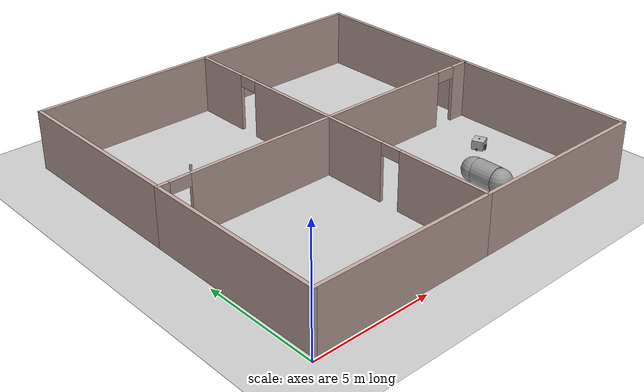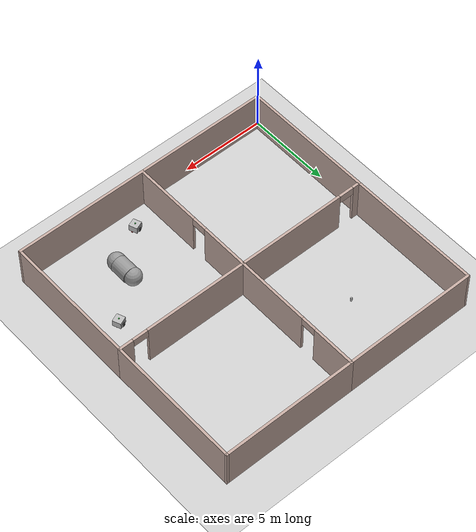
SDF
<sdf version="1.7">
 <world name="default">
  <light name="sun" type="directional">
   <pose>0 0 10 0 -0 0</pose>
   <diffuse>0.8 0.8 0.8 1</diffuse>
   <specular>0.2 0.2 0.2 1</specular>
   <attenuation>
    <range>1000</range>
    <constant>0.9</constant>
    <linear>0.01</linear>
    <quadratic>0.001</quadratic>
   </attenuation>
   <direction>-0.5 0.1 -0.9</direction>
   <spot><inner_angle>0</inner_angle><outer_angle>0</outer_angle><falloff>0</falloff></spot>
  </light>
  <model name="ground_plane">
   <static>1</static>
   <link name="link">
    <collision name="collision">
     <geometry><plane><normal>0 0 1</normal><size>100 100</size></plane></geometry>
     <surface><friction><ode><mu>100</mu><mu2>50</mu2></ode></friction></surface>
    </collision>
    <visual name="visual">
     <cast_shadows>0</cast_shadows>
     <geometry><plane><normal>0 0 1</normal><size>100 100</size></plane></geometry>
     <material>
      <script><uri>file://media/materials/scripts/gazebo.material</uri><name>Gazebo/Grey</name></script>
     </material>
    </visual>
   </link>
  </model>
  <gravity>0 0 -9.8</gravity>
  <magnetic_field>6e-06 2.3e-05 -4.2e-05</magnetic_field>
  <atmosphere type="adiabatic"/>
  <physics type="ode">
   <max_step_size>0.001</max_step_size>
   <real_time_factor>1</real_time_factor>
   <real_time_update_rate>1000</real_time_update_rate>
  </physics>
  <scene><ambient>0.4 0.4 0.4 1</ambient><background>0.7 0.7 0.7 1</background><shadows>1</shadows></scene>
  <audio><device>default</device></audio>
  <spherical_coordinates>
   <surface_model>EARTH_WGS84</surface_model>
   <latitude_deg>0</latitude_deg>
   <longitude_deg>0</longitude_deg>
   <elevation>0</elevation>
   <heading_deg>0</heading_deg>
  </spherical_coordinates>
  <model name="plane_2">
   <pose>8.06755 8.03884 0 0 -0 0</pose>
   <link name="Wall_10">
    <pose>-3.925 0 0 0 -0 0</pose>
    <visual name="Wall_10_Visual_0">
     <pose>-3.73035 0 1.25 0 -0 0</pose>
     <geometry><box><size>0.539304 0.15 2.5</size></box></geometry>
     <material>
      <script><uri>file://media/materials/scripts/gazebo.material</uri><name>Gazebo/Grey</name></script>
      <ambient>0.760784 0.662745 0.627451 1</ambient>
     </material>
     <meta><layer>0</layer></meta>
    </visual>
    <collision name="Wall_10_Collision_0">
     <geometry><box><size>0.539304 0.15 2.5</size></box></geometry>
     <pose>-3.73035 0 1.25 0 -0 0</pose>
    </collision>
    <visual name="Wall_10_Visual_1">
     <pose>0.719652 0 1.25 0 -0 0</pose>
     <geometry><box><size>6.5607 0.15 2.5</size></box></geometry>
     <material>
      <script><uri>file://media/materials/scripts/gazebo.material</uri><name>Gazebo/Grey</name></script>
      <ambient>0.760784 0.662745 0.627451 1</ambient>
     </material>
     <meta><layer>0</layer></meta>
    </visual>
    <collision name="Wall_10_Collision_1">
     <geometry><box><size>6.5607 0.15 2.5</size></box></geometry>
     <pose>0.719652 0 1.25 0 -0 0</pose>
    </collision>
    <visual name="Wall_10_Visual_2">
     <pose>-3.0107 0 2.25 0 -0 0</pose>
     <geometry><box><size>0.9 0.15 0.5</size></box></geometry>
     <material>
      <script><uri>file://media/materials/scripts/gazebo.material</uri><name>Gazebo/Grey</name></script>
      <ambient>0.760784 0.662745 0.627451 1</ambient>
     </material>
     <meta><layer>0</layer></meta>
    </visual>
    <collision name="Wall_10_Collision_2">
     <geometry><box><size>0.9 0.15 0.5</size></box></geometry>
     <pose>-3.0107 0 2.25 0 -0 0</pose>
    </collision>
   </link>
   <link name="Wall_11">
    <pose>-0 -3.925 0 0 -0 -1.5708</pose>
    <visual name="Wall_11_Visual_0">
     <pose>-2.52544 0 1.25 0 -0 0</pose>
     <geometry><box><size>2.94912 0.15 2.5</size></box></geometry>
     <material>
      <script><uri>file://media/materials/scripts/gazebo.material</uri><name>Gazebo/Grey</name></script>
      <ambient>0.760784 0.662745 0.627451 1</ambient>
     </material>
     <meta><layer>0</layer></meta>
    </visual>
    <collision name="Wall_11_Collision_0">
     <geometry><box><size>2.94912 0.15 2.5</size></box></geometry>
     <pose>-2.52544 0 1.25 0 -0 0</pose>
    </collision>
    <visual name="Wall_11_Visual_1">
     <pose>1.92456 0 1.25 0 -0 0</pose>
     <geometry><box><size>4.15088 0.15 2.5</size></box></geometry>
     <material>
      <script><uri>file://media/materials/scripts/gazebo.material</uri><name>Gazebo/Grey</name></script>
      <ambient>0.760784 0.662745 0.627451 1</ambient>
     </material>
     <meta><layer>0</layer></meta>
    </visual>
    <collision name="Wall_11_Collision_1">
     <geometry><box><size>4.15088 0.15 2.5</size></box></geometry>
     <pose>1.92456 0 1.25 0 -0 0</pose>
    </collision>
    <visual name="Wall_11_Visual_2">
     <pose>-0.600877 0 2.25 0 -0 0</pose>
     <geometry><box><size>0.9 0.15 0.5</size></box></geometry>
     <material>
      <script><uri>file://media/materials/scripts/gazebo.material</uri><name>Gazebo/Grey</name></script>
      <ambient>0.760784 0.662745 0.627451 1</ambient>
     </material>
     <meta><layer>0</layer></meta>
    </visual>
    <collision name="Wall_11_Collision_2">
     <geometry><box><size>0.9 0.15 0.5</size></box></geometry>
     <pose>-0.600877 0 2.25 0 -0 0</pose>
    </collision>
   </link>
   <link name="Wall_12">
    <collision name="Wall_12_Collision">
     <geometry><box><size>8 0.15 2.5</size></box></geometry>
     <pose>0 0 1.25 0 -0 0</pose>
    </collision>
    <visual name="Wall_12_Visual">
     <pose>0 0 1.25 0 -0 0</pose>
     <geometry><box><size>8 0.15 2.5</size></box></geometry>
     <material>
      <script><uri>file://media/materials/scripts/gazebo.material</uri><name>Gazebo/Grey</name></script>
      <ambient>0.760784 0.662745 0.627451 1</ambient>
     </material>
     <meta><layer>0</layer></meta>
    </visual>
    <pose>-3.925 -7.85 0 0 -0 3.14159</pose>
   </link>
   <link name="Wall_15">
    <pose>3.925 0 0 0 -0 0</pose>
    <visual name="Wall_15_Visual_0">
     <pose>-0.892945 0 1.25 0 -0 0</pose>
     <geometry><box><size>6.21411 0.15 2.5</size></box></geometry>
     <material>
      <script><uri>file://media/materials/scripts/gazebo.material</uri><name>Gazebo/Grey</name></script>
      <ambient>0.760784 0.662745 0.627451 1</ambient>
     </material>
     <meta><layer>0</layer></meta>
    </visual>
    <collision name="Wall_15_Collision_0">
     <geometry><box><size>6.21411 0.15 2.5</size></box></geometry>
     <pose>-0.892945 0 1.25 0 -0 0</pose>
    </collision>
    <visual name="Wall_15_Visual_1">
     <pose>3.55706 0 1.25 0 -0 0</pose>
     <geometry><box><size>0.885891 0.15 2.5</size></box></geometry>
     <material>
      <script><uri>file://media/materials/scripts/gazebo.material</uri><name>Gazebo/Grey</name></script>
      <ambient>0.760784 0.662745 0.627451 1</ambient>
     </material>
     <meta><layer>0</layer></meta>
    </visual>
    <collision name="Wall_15_Collision_1">
     <geometry><box><size>0.885891 0.15 2.5</size></box></geometry>
     <pose>3.55706 0 1.25 0 -0 0</pose>
    </collision>
    <visual name="Wall_15_Visual_2">
     <pose>2.66411 0 2.25 0 -0 0</pose>
     <geometry><box><size>0.9 0.15 0.5</size></box></geometry>
     <material>
      <script><uri>file://media/materials/scripts/gazebo.material</uri><name>Gazebo/Grey</name></script>
      <ambient>0.760784 0.662745 0.627451 1</ambient>
     </material>
     <meta><layer>0</layer></meta>
    </visual>
    <collision name="Wall_15_Collision_2">
     <geometry><box><size>0.9 0.15 0.5</size></box></geometry>
     <pose>2.66411 0 2.25 0 -0 0</pose>
    </collision>
   </link>
   <link name="Wall_16">
    <collision name="Wall_16_Collision">
     <geometry><box><size>8 0.15 2.5</size></box></geometry>
     <pose>0 0 1.25 0 -0 0</pose>
    </collision>
    <visual name="Wall_16_Visual">
     <pose>0 0 1.25 0 -0 0</pose>
     <geometry><box><size>8 0.15 2.5</size></box></geometry>
     <material>
      <script><uri>file://media/materials/scripts/gazebo.material</uri><name>Gazebo/Grey</name></script>
      <ambient>0.760784 0.662745 0.627451 1</ambient>
     </material>
     <meta><layer>0</layer></meta>
    </visual>
    <pose>7.85 -3.925 0 0 -0 -1.5708</pose>
   </link>
   <link name="Wall_17">
    <collision name="Wall_17_Collision">
     <geometry><box><size>8 0.15 2.5</size></box></geometry>
     <pose>0 0 1.25 0 -0 0</pose>
    </collision>
    <visual name="Wall_17_Visual">
     <pose>0 0 1.25 0 -0 0</pose>
     <geometry><box><size>8 0.15 2.5</size></box></geometry>
     <material>
      <script><uri>file://media/materials/scripts/gazebo.material</uri><name>Gazebo/Grey</name></script>
      <ambient>0.760784 0.662745 0.627451 1</ambient>
     </material>
     <meta><layer>0</layer></meta>
    </visual>
    <pose>3.925 -7.85 0 0 -0 3.14159</pose>
   </link>
   <link name="Wall_26">
    <collision name="Wall_26_Collision">
     <geometry><box><size>8 0.15 2.5</size></box></geometry>
     <pose>0 0 1.25 0 -0 0</pose>
    </collision>
    <visual name="Wall_26_Visual">
     <pose>0 0 1.25 0 -0 0</pose>
     <geometry><box><size>8 0.15 2.5</size></box></geometry>
     <material>
      <script><uri>file://media/materials/scripts/gazebo.material</uri><name>Gazebo/Grey</name></script>
      <ambient>0.760784 0.662745 0.627451 1</ambient>
     </material>
     <meta><layer>0</layer></meta>
    </visual>
    <pose>-7.85 3.925 0 0 -0 1.5708</pose>
   </link>
   <link name="Wall_27">
    <collision name="Wall_27_Collision">
     <geometry><box><size>8 0.15 2.5</size></box></geometry>
     <pose>0 0 1.25 0 -0 0</pose>
    </collision>
    <visual name="Wall_27_Visual">
     <pose>0 0 1.25 0 -0 0</pose>
     <geometry><box><size>8 0.15 2.5</size></box></geometry>
     <material>
      <script><uri>file://media/materials/scripts/gazebo.material</uri><name>Gazebo/Grey</name></script>
      <ambient>0.760784 0.662745 0.627451 1</ambient>
     </material>
     <meta><layer>0</layer></meta>
    </visual>
    <pose>-3.925 7.85 0 0 -0 0</pose>
   </link>
   <link name="Wall_28">
    <pose>-0 3.925 0 0 -0 -1.5708</pose>
    <visual name="Wall_28_Visual_0">
     <pose>-2.68769 0 1.25 0 -0 0</pose>
     <geometry><box><size>2.62462 0.15 2.5</size></box></geometry>
     <material>
      <script><uri>file://media/materials/scripts/gazebo.material</uri><name>Gazebo/Grey</name></script>
      <ambient>0.760784 0.662745 0.627451 1</ambient>
     </material>
     <meta><layer>0</layer></meta>
    </visual>
    <collision name="Wall_28_Collision_0">
     <geometry><box><size>2.62462 0.15 2.5</size></box></geometry>
     <pose>-2.68769 0 1.25 0 -0 0</pose>
    </collision>
    <visual name="Wall_28_Visual_1">
     <pose>1.76231 0 1.25 0 -0 0</pose>
     <geometry><box><size>4.47538 0.15 2.5</size></box></geometry>
     <material>
      <script><uri>file://media/materials/scripts/gazebo.material</uri><name>Gazebo/Grey</name></script>
      <ambient>0.760784 0.662745 0.627451 1</ambient>
     </material>
     <meta><layer>0</layer></meta>
    </visual>
    <collision name="Wall_28_Collision_1">
     <geometry><box><size>4.47538 0.15 2.5</size></box></geometry>
     <pose>1.76231 0 1.25 0 -0 0</pose>
    </collision>
    <visual name="Wall_28_Visual_2">
     <pose>-0.925382 0 2.25 0 -0 0</pose>
     <geometry><box><size>0.9 0.15 0.5</size></box></geometry>
     <material>
      <script><uri>file://media/materials/scripts/gazebo.material</uri><name>Gazebo/Grey</name></script>
      <ambient>0.760784 0.662745 0.627451 1</ambient>
     </material>
     <meta><layer>0</layer></meta>
    </visual>
    <collision name="Wall_28_Collision_2">
     <geometry><box><size>0.9 0.15 0.5</size></box></geometry>
     <pose>-0.925382 0 2.25 0 -0 0</pose>
    </collision>
   </link>
   <link name="Wall_30">
    <collision name="Wall_30_Collision">
     <geometry><box><size>8 0.15 2.5</size></box></geometry>
     <pose>0 0 1.25 0 -0 0</pose>
    </collision>
    <visual name="Wall_30_Visual">
     <pose>0 0 1.25 0 -0 0</pose>
     <geometry><box><size>8 0.15 2.5</size></box></geometry>
     <material>
      <script><uri>file://media/materials/scripts/gazebo.material</uri><name>Gazebo/Grey</name></script>
      <ambient>0.760784 0.662745 0.627451 1</ambient>
     </material>
     <meta><layer>0</layer></meta>
    </visual>
    <pose>7.85 3.925 0 0 -0 1.5708</pose>
   </link>
   <link name="Wall_31">
    <collision name="Wall_31_Collision">
     <geometry><box><size>8 0.15 2.5</size></box></geometry>
     <pose>0 0 1.25 0 -0 0</pose>
    </collision>
    <visual name="Wall_31_Visual">
     <pose>0 0 1.25 0 -0 0</pose>
     <geometry><box><size>8 0.15 2.5</size></box></geometry>
     <material>
      <script><uri>file://media/materials/scripts/gazebo.material</uri><name>Gazebo/Grey</name></script>
      <ambient>0.760784 0.662745 0.627451 1</ambient>
     </material>
     <meta><layer>0</layer></meta>
    </visual>
    <pose>3.925 7.85 0 0 -0 3.14159</pose>
   </link>
   <link name="Wall_9">
    <collision name="Wall_9_Collision">
     <geometry><box><size>8 0.15 2.5</size></box></geometry>
     <pose>0 0 1.25 0 -0 0</pose>
    </collision>
    <visual name="Wall_9_Visual">
     <pose>0 0 1.25 0 -0 0</pose>
     <geometry><box><size>8 0.15 2.5</size></box></geometry>
     <material>
      <script><uri>file://media/materials/scripts/gazebo.material</uri><name>Gazebo/Grey</name></script>
      <ambient>0.760784 0.662745 0.627451 1</ambient>
     </material>
     <meta><layer>0</layer></meta>
    </visual>
    <pose>-7.85 -3.925 0 0 -0 1.5708</pose>
   </link>
   <static>1</static>
  </model>
  <model name="beer">
   <link name="link">
    <pose>0 0 0.115 0 -0 0</pose>
    <inertial>
     <mass>0.39</mass>
     <inertia><ixx>0.00058</ixx><ixy>0</ixy><ixz>0</ixz><iyy>0.00058</iyy><iyz>0</iyz><izz>0.00019</izz></inertia>
    </inertial>
    <collision name="collision">
     <geometry><cylinder><radius>0.055</radius><length>0.23</length></cylinder></geometry>
    </collision>
    <visual name="visual">
     <geometry><cylinder><radius>0.055</radius><length>0.23</length></cylinder></geometry>
     <material>
      <script>
       <uri>model://beer/materials/scripts</uri>
       <uri>model://beer/materials/textures</uri>
       <name>Beer/Diffuse</name>
      </script>
     </material>
    </visual>
   </link>
   <pose>4.27424 11.9649 -2e-06 1e-06 -0 -4.8e-05</pose>
  </model>
  <model name="pollo">
   <link name="pollo/base_link">
    <inertial>
     <pose>0.05 0 0.101429 0 -0 0</pose>
     <mass>0.7</mass>
     <inertia>
      <ixx>0.0258086</ixx>
      <ixy>0</ixy>
      <ixz>-0.00345</ixz>
      <iyy>0.0363086</iyy>
      <iyz>0</iyz>
      <izz>0.0135</izz>
     </inertia>
    </inertial>
    <collision name="pollo/base_link_fixed_joint_lump__pollo/chassis_link_collision">
     <pose>0 0 0.3 0 -0 0</pose>
     <geometry><box><size>0.57 0.52 0.5</size></box></geometry>
     <surface><friction><ode><mu>1e-06</mu><mu2>1e-06</mu2></ode></friction></surface>
    </collision>
    <visual name="pollo/base_link_fixed_joint_lump__body_visual_visual">
     <pose>0 0 0.3 0 -0 0</pose>
     <geometry><box><size>0.5 0.5 0.4</size></box></geometry>
    </visual>
    <visual name="pollo/base_link_fixed_joint_lump__front_caster_visual_visual_1">
     <pose>-0.2 0 0.1 1.57079 1.57079 3.14159</pose>
     <geometry><cylinder><length>0.05</length><radius>0.05</radius></cylinder></geometry>
    </visual>
    <visual name="pollo/base_link_fixed_joint_lump__back_caster_visual_visual_2">
     <pose>0.2 0 0.1 1.57079 1.57079 3.14159</pose>
     <geometry><cylinder><length>0.05</length><radius>0.05</radius></cylinder></geometry>
    </visual>
    <visual name="pollo/base_link_fixed_joint_lump__pollo/frontal_camera_link_visual_3">
     <pose>0.35 0.0125 0.2 0 -0 0</pose>
     <geometry><box><size>0.025 0.1 0.025</size></box></geometry>
     <material>
      <script><name>Gazebo/Red</name><uri>file://media/materials/scripts/gazebo.material</uri></script>
     </material>
    </visual>
    <visual name="pollo/base_link_fixed_joint_lump__pollo/base_laser_visual_4">
     <pose>0 0 0.52 0 -0 0</pose>
     <geometry><cylinder><length>0.02</length><radius>0.04</radius></cylinder></geometry>
     <material>
      <script><name>Gazebo/Green</name><uri>file://media/materials/scripts/gazebo.material</uri></script>
     </material>
    </visual>
    <sensor name="f_camera" type="depth">
     <visualize>1</visualize>
     <update_rate>10</update_rate>
     <camera>
      <horizontal_fov>1.089</horizontal_fov>
      <image><format>B8G8R8</format><width>640</width><height>240</height><heigth>480</heigth></image>
      <clip><near>0.05</near><far>8</far></clip>
      <noise><type>gaussian</type><mean>0</mean><stddev>0.1</stddev></noise>
     </camera>
     <plugin name="f_camera_controller" filename="libgazebo_ros_camera.so">
      <frame_name>pollo/frontal_camera_link_optical</frame_name>
      <min_depth>0.1</min_depth>
      <max_depth>100.0</max_depth>
      <ros><namespace>pollo</namespace></ros>
     </plugin>
     <pose>0.35 0 0.2 0 -0 0</pose>
    </sensor>
    <sensor name="laser" type="ray">
     <visualize>0</visualize>
     <update_rate>4</update_rate>
     <ray>
      <scan>
       <horizontal>
        <samples>360</samples>
        <min_angle>-3.14</min_angle>
        <max_angle>3.14</max_angle>
        <resolution>1</resolution>
       </horizontal>
       <vertical><samples>1</samples><min_angle>0</min_angle><max_angle>0</max_angle></vertical>
      </scan>
      <range><min>0.403553</min><max>15</max></range>
      <noise><type>gaussian</type><mean>0</mean><stddev>0.02</stddev></noise>
     </ray>
     <plugin name="laser_controller" filename="libgazebo_ros_ray_sensor.so">
      <ros><remapping>~/out:=scan</remapping><namespace>pollo</namespace></ros>
      <output_type>sensor_msgs/LaserScan</output_type>
      <frame_name>pollo/base_laser</frame_name>
     </plugin>
     <pose>0 0 0.51 0 -0 0</pose>
    </sensor>
   </link>
   <joint name="pollo/left_wheel_joint" type="revolute">
    <pose relative_to="pollo/base_link">0 0.27 0.175 1.57079 1.57079 3.14159</pose>
    <parent>pollo/base_link</parent>
    <child>pollo/left_wheel</child>
    <axis>
     <xyz>0 0 1</xyz>
     <limit><lower>-1e+16</lower><upper>1e+16</upper></limit>
     <dynamics><spring_reference>0</spring_reference><spring_stiffness>0</spring_stiffness></dynamics>
    </axis>
   </joint>
   <link name="pollo/left_wheel">
    <pose relative_to="pollo/left_wheel_joint">0 0 0 0 -0 0</pose>
    <inertial>
     <mass>0.0284989</mass>
     <inertia>
      <ixx>1.11756e-05</ixx>
      <ixy>-4.23698e-11</ixy>
      <ixz>-5.93817e-09</ixz>
      <iyy>1.11924e-05</iyy>
      <iyz>-1.44001e-11</iyz>
      <izz>2.07126e-05</izz>
     </inertia>
    </inertial>
    <collision name="pollo/left_wheel_collision">
     <geometry><cylinder><length>0.035</length><radius>0.125</radius></cylinder></geometry>
    </collision>
    <visual name="pollo/left_wheel_visual">
     <geometry><cylinder><length>0.03</length><radius>0.125</radius></cylinder></geometry>
     <material>
      <script><name>Gazebo/Black</name><uri>file://media/materials/scripts/gazebo.material</uri></script>
     </material>
    </visual>
    <plugin filename="libgazebo_ros_joint_state_publisher.so" name="gazebo_ros_joint_state_publisher">
     <update_rate>100</update_rate>
     <ros><remapping>~/out:=joint_states</remapping><namespace>pollo</namespace></ros>
     <joint_name>left_wheel_joint</joint_name>
    </plugin>
   </link>
   <joint name="pollo/right_wheel_joint" type="revolute">
    <pose relative_to="pollo/base_link">0 -0.27 0.175 1.57079 1.57079 3.14159</pose>
    <parent>pollo/base_link</parent>
    <child>pollo/right_wheel</child>
    <axis>
     <xyz>0 0 1</xyz>
     <limit><lower>-1e+16</lower><upper>1e+16</upper></limit>
     <dynamics><spring_reference>0</spring_reference><spring_stiffness>0</spring_stiffness></dynamics>
    </axis>
   </joint>
   <link name="pollo/right_wheel">
    <pose relative_to="pollo/right_wheel_joint">0 0 0 0 -0 0</pose>
    <inertial>
     <mass>0.0284989</mass>
     <inertia>
      <ixx>1.11756e-05</ixx>
      <ixy>-4.23698e-11</ixy>
      <ixz>-5.93817e-09</ixz>
      <iyy>1.11924e-05</iyy>
      <iyz>-1.44001e-11</iyz>
      <izz>2.07126e-05</izz>
     </inertia>
    </inertial>
    <collision name="pollo/right_wheel_collision">
     <geometry><cylinder><length>0.035</length><radius>0.125</radius></cylinder></geometry>
    </collision>
    <visual name="pollo/right_wheel_visual">
     <geometry><cylinder><length>0.03</length><radius>0.125</radius></cylinder></geometry>
     <material>
      <script><name>Gazebo/Black</name><uri>file://media/materials/scripts/gazebo.material</uri></script>
     </material>
    </visual>
    <plugin filename="libgazebo_ros_joint_state_publisher.so" name="gazebo_ros_joint_state_publisher">
     <update_rate>100</update_rate>
     <ros><remapping>~/out:=joint_states</remapping><namespace>pollo</namespace></ros>
     <joint_name>right_wheel_joint</joint_name>
    </plugin>
   </link>
   <static>0</static>
   <plugin name="diff_drive" filename="libgazebo_ros_diff_drive.so">
    <update_rate>30</update_rate>
    <left_joint>pollo/left_wheel_joint</left_joint>
    <right_joint>pollo/right_wheel_joint</right_joint>
    <wheel_separation>0.54</wheel_separation>
    <wheel_diameter>0.25</wheel_diameter>
    <max_wheel_torque>20</max_wheel_torque>
    <max_wheel_acceleration>1.0</max_wheel_acceleration>
    <command_topic>cmd_vel</command_topic>
    <odometry_frame>pollo/odom</odometry_frame>
    <robot_base_frame>pollo/base_link</robot_base_frame>
    <publish_odom>1</publish_odom>
    <publish_odom_tf>1</publish_odom_tf>
    <publish_wheel_tf>1</publish_wheel_tf>
    <ros><namespace>pollo</namespace></ros>
   </plugin>
   <pose>13.9854 5.42388 -0.05 0 0 -2.75189</pose>
  </model>
  <model name="shelfino1">
   <link name="shelfino1/base_link">
    <inertial>
     <pose>0.05 0 0.101429 0 -0 0</pose>
     <mass>0.7</mass>
     <inertia>
      <ixx>0.0258086</ixx>
      <ixy>0</ixy>
      <ixz>-0.00345</ixz>
      <iyy>0.0363086</iyy>
      <iyz>0</iyz>
      <izz>0.0135</izz>
     </inertia>
    </inertial>
    <collision name="shelfino1/base_link_fixed_joint_lump__shelfino1/chassis_link_collision">
     <pose>0 0 0.3 0 -0 0</pose>
     <geometry><box><size>0.57 0.52 0.5</size></box></geometry>
     <surface><friction><ode><mu>1e-06</mu><mu2>1e-06</mu2></ode></friction></surface>
    </collision>
    <visual name="shelfino1/base_link_fixed_joint_lump__body_visual_visual">
     <pose>0 0 0.3 0 -0 0</pose>
     <geometry><box><size>0.5 0.5 0.4</size></box></geometry>
    </visual>
    <visual name="shelfino1/base_link_fixed_joint_lump__front_caster_visual_visual_1">
     <pose>-0.2 0 0.1 1.57079 1.57079 3.14159</pose>
     <geometry><cylinder><length>0.05</length><radius>0.05</radius></cylinder></geometry>
    </visual>
    <visual name="shelfino1/base_link_fixed_joint_lump__back_caster_visual_visual_2">
     <pose>0.2 0 0.1 1.57079 1.57079 3.14159</pose>
     <geometry><cylinder><length>0.05</length><radius>0.05</radius></cylinder></geometry>
    </visual>
    <visual name="shelfino1/base_link_fixed_joint_lump__shelfino1/frontal_camera_link_visual_3">
     <pose>0.35 0.0125 0.2 0 -0 0</pose>
     <geometry><box><size>0.025 0.1 0.025</size></box></geometry>
     <material>
      <script><name>Gazebo/Red</name><uri>file://media/materials/scripts/gazebo.material</uri></script>
     </material>
    </visual>
    <visual name="shelfino1/base_link_fixed_joint_lump__shelfino1/base_laser_visual_4">
     <pose>0 0 0.52 0 -0 0</pose>
     <geometry><cylinder><length>0.02</length><radius>0.04</radius></cylinder></geometry>
     <material>
      <script><name>Gazebo/Green</name><uri>file://media/materials/scripts/gazebo.material</uri></script>
     </material>
    </visual>
    <sensor name="f_camera" type="depth">
     <visualize>1</visualize>
     <update_rate>10</update_rate>
     <camera>
      <horizontal_fov>1.089</horizontal_fov>
      <image><format>B8G8R8</format><width>640</width><height>240</height><heigth>480</heigth></image>
      <clip><near>0.05</near><far>8</far></clip>
      <noise><type>gaussian</type><mean>0</mean><stddev>0.1</stddev></noise>
     </camera>
     <plugin name="f_camera_controller" filename="libgazebo_ros_camera.so">
      <frame_name>shelfino1/frontal_camera_link_optical</frame_name>
      <min_depth>0.1</min_depth>
      <max_depth>100.0</max_depth>
      <ros><namespace>shelfino1</namespace></ros>
     </plugin>
     <pose>0.35 0 0.2 0 -0 0</pose>
    </sensor>
    <sensor name="laser" type="ray">
     <visualize>0</visualize>
     <update_rate>4</update_rate>
     <ray>
      <scan>
       <horizontal>
        <samples>360</samples>
        <min_angle>-3.14</min_angle>
        <max_angle>3.14</max_angle>
        <resolution>1</resolution>
       </horizontal>
       <vertical><samples>1</samples><min_angle>0</min_angle><max_angle>0</max_angle></vertical>
      </scan>
      <range><min>0.403553</min><max>15</max></range>
      <noise><type>gaussian</type><mean>0</mean><stddev>0.02</stddev></noise>
     </ray>
     <plugin name="laser_controller" filename="libgazebo_ros_ray_sensor.so">
      <ros><remapping>~/out:=scan</remapping><namespace>shelfino1</namespace></ros>
      <output_type>sensor_msgs/LaserScan</output_type>
      <frame_name>shelfino1/base_laser</frame_name>
     </plugin>
     <pose>0 0 0.51 0 -0 0</pose>
    </sensor>
   </link>
   <joint name="shelfino1/left_wheel_joint" type="revolute">
    <pose relative_to="shelfino1/base_link">0 0.27 0.175 1.57079 1.57079 3.14159</pose>
    <parent>shelfino1/base_link</parent>
    <child>shelfino1/left_wheel</child>
    <axis>
     <xyz>0 0 1</xyz>
     <limit><lower>-1e+16</lower><upper>1e+16</upper></limit>
     <dynamics><spring_reference>0</spring_reference><spring_stiffness>0</spring_stiffness></dynamics>
    </axis>
   </joint>
   <link name="shelfino1/left_wheel">
    <pose relative_to="shelfino1/left_wheel_joint">0 0 0 0 -0 0</pose>
    <inertial>
     <mass>0.0284989</mass>
     <inertia>
      <ixx>1.11756e-05</ixx>
      <ixy>-4.23698e-11</ixy>
      <ixz>-5.93817e-09</ixz>
      <iyy>1.11924e-05</iyy>
      <iyz>-1.44001e-11</iyz>
      <izz>2.07126e-05</izz>
     </inertia>
    </inertial>
    <collision name="shelfino1/left_wheel_collision">
     <geometry><cylinder><length>0.035</length><radius>0.125</radius></cylinder></geometry>
    </collision>
    <visual name="shelfino1/left_wheel_visual">
     <geometry><cylinder><length>0.03</length><radius>0.125</radius></cylinder></geometry>
     <material>
      <script><name>Gazebo/Black</name><uri>file://media/materials/scripts/gazebo.material</uri></script>
     </material>
    </visual>
    <plugin filename="libgazebo_ros_joint_state_publisher.so" name="gazebo_ros_joint_state_publisher">
     <update_rate>100</update_rate>
     <ros><remapping>~/out:=joint_states</remapping><namespace>shelfino1</namespace></ros>
     <joint_name>left_wheel_joint</joint_name>
    </plugin>
   </link>
   <joint name="shelfino1/right_wheel_joint" type="revolute">
    <pose relative_to="shelfino1/base_link">0 -0.27 0.175 1.57079 1.57079 3.14159</pose>
    <parent>shelfino1/base_link</parent>
    <child>shelfino1/right_wheel</child>
    <axis>
     <xyz>0 0 1</xyz>
     <limit><lower>-1e+16</lower><upper>1e+16</upper></limit>
     <dynamics><spring_reference>0</spring_reference><spring_stiffness>0</spring_stiffness></dynamics>
    </axis>
   </joint>
   <link name="shelfino1/right_wheel">
    <pose relative_to="shelfino1/right_wheel_joint">0 0 0 0 -0 0</pose>
    <inertial>
     <mass>0.0284989</mass>
     <inertia>
      <ixx>1.11756e-05</ixx>
      <ixy>-4.23698e-11</ixy>
      <ixz>-5.93817e-09</ixz>
      <iyy>1.11924e-05</iyy>
      <iyz>-1.44001e-11</iyz>
      <izz>2.07126e-05</izz>
     </inertia>
    </inertial>
    <collision name="shelfino1/right_wheel_collision">
     <geometry><cylinder><length>0.035</length><radius>0.125</radius></cylinder></geometry>
    </collision>
    <visual name="shelfino1/right_wheel_visual">
     <geometry><cylinder><length>0.03</length><radius>0.125</radius></cylinder></geometry>
     <material>
      <script><name>Gazebo/Black</name><uri>file://media/materials/scripts/gazebo.material</uri></script>
     </material>
    </visual>
    <plugin filename="libgazebo_ros_joint_state_publisher.so" name="gazebo_ros_joint_state_publisher">
     <update_rate>100</update_rate>
     <ros><remapping>~/out:=joint_states</remapping><namespace>shelfino1</namespace></ros>
     <joint_name>right_wheel_joint</joint_name>
    </plugin>
   </link>
   <static>0</static>
   <plugin name="diff_drive" filename="libgazebo_ros_diff_drive.so">
    <update_rate>30</update_rate>
    <left_joint>shelfino1/left_wheel_joint</left_joint>
    <right_joint>shelfino1/right_wheel_joint</right_joint>
    <wheel_separation>0.54</wheel_separation>
    <wheel_diameter>0.25</wheel_diameter>
    <max_wheel_torque>20</max_wheel_torque>
    <max_wheel_acceleration>1.0</max_wheel_acceleration>
    <command_topic>cmd_vel</command_topic>
    <odometry_frame>shelfino1/odom</odometry_frame>
    <robot_base_frame>shelfino1/base_link</robot_base_frame>
    <publish_odom>1</publish_odom>
    <publish_odom_tf>1</publish_odom_tf>
    <publish_wheel_tf>1</publish_wheel_tf>
    <ros><namespace>shelfino1</namespace></ros>
   </plugin>
   <pose>9.55516 1.28726 -0.05 0 -0 0.36822</pose>
  </model>
  <model name="unit_cylinder">
   <link name="link">
    <inertial>
     <mass>1</mass>
     <inertia><ixx>0.145833</ixx><ixy>0</ixy><ixz>0</ixz><iyy>0.145833</iyy><iyz>0</iyz><izz>0.125</izz></inertia>
    </inertial>
    <visual name="visual">
     <geometry><cylinder><radius>0.5</radius><length>1</length></cylinder></geometry>
     <material>
      <script><name>Gazebo/Grey</name><uri>file://media/materials/scripts/gazebo.material</uri></script>
      <shader type="pixel"/>
     </material>
    </visual>
    <collision name="collision">
     <geometry><cylinder><radius>0.5</radius><length>1</length></cylinder></geometry>
     <surface>
      <friction>
       <ode><mu>1</mu><mu2>1</mu2><fdir1>0 0 0</fdir1><slip1>0</slip1><slip2>0</slip2></ode>
       <torsional>
        <coefficient>1</coefficient>
        <patch_radius>0</patch_radius>
        <surface_radius>0</surface_radius>
        <use_patch_radius>1</use_patch_radius>
        <ode><slip>0</slip></ode>
       </torsional>
      </friction>
      <bounce><restitution_coefficient>0</restitution_coefficient><threshold>1e+06</threshold></bounce>
      <contact>
       <collide_without_contact>0</collide_without_contact>
       <collide_without_contact_bitmask>1</collide_without_contact_bitmask>
       <collide_bitmask>1</collide_bitmask>
       <ode>
        <soft_cfm>0</soft_cfm>
        <soft_erp>0.2</soft_erp>
        <kp>1e+13</kp>
        <kd>1</kd>
        <max_vel>0.01</max_vel>
        <min_depth>0</min_depth>
       </ode>
       <bullet>
        <split_impulse>1</split_impulse>
        <split_impulse_penetration_threshold>-0.01</split_impulse_penetration_threshold>
        <soft_cfm>0</soft_cfm>
        <soft_erp>0.2</soft_erp>
        <kp>1e+13</kp>
        <kd>1</kd>
       </bullet>
      </contact>
     </surface>
    </collision>
   </link>
   <link name="link_3">
    <inertial>
     <mass>1</mass>
     <inertia><ixx>0.1</ixx><ixy>0</ixy><ixz>0</ixz><iyy>0.1</iyy><iyz>0</iyz><izz>0.1</izz></inertia>
    </inertial>
    <pose>-0.029853 -0.00034 0.620109 1.57135 -0 0</pose>
    <visual name="visual">
     <geometry><sphere><radius>0.5</radius></sphere></geometry>
     <material>
      <lighting>1</lighting>
      <script><uri>file://media/materials/scripts/gazebo.material</uri><name>Gazebo/Grey</name></script>
      <shader type="pixel"/>
     </material>
    </visual>
    <collision name="collision">
     <geometry><sphere><radius>0.5</radius></sphere></geometry>
     <surface>
      <friction>
       <ode><mu>1</mu><mu2>1</mu2><fdir1>0 0 0</fdir1><slip1>0</slip1><slip2>0</slip2></ode>
       <torsional>
        <coefficient>1</coefficient>
        <patch_radius>0</patch_radius>
        <surface_radius>0</surface_radius>
        <use_patch_radius>1</use_patch_radius>
        <ode><slip>0</slip></ode>
       </torsional>
      </friction>
      <bounce><restitution_coefficient>0</restitution_coefficient><threshold>1e+06</threshold></bounce>
      <contact>
       <collide_without_contact>0</collide_without_contact>
       <collide_without_contact_bitmask>1</collide_without_contact_bitmask>
       <collide_bitmask>1</collide_bitmask>
       <ode>
        <soft_cfm>0</soft_cfm>
        <soft_erp>0.2</soft_erp>
        <kp>1e+13</kp>
        <kd>1</kd>
        <max_vel>0.01</max_vel>
        <min_depth>0</min_depth>
       </ode>
       <bullet>
        <split_impulse>1</split_impulse>
        <split_impulse_penetration_threshold>-0.01</split_impulse_penetration_threshold>
        <soft_cfm>0</soft_cfm>
        <soft_erp>0.2</soft_erp>
        <kp>1e+13</kp>
        <kd>1</kd>
       </bullet>
      </contact>
     </surface>
    </collision>
   </link>
   <link name="link_4">
    <inertial>
     <mass>1</mass>
     <inertia><ixx>0.1</ixx><ixy>0</ixy><ixz>0</ixz><iyy>0.1</iyy><iyz>0</iyz><izz>0.1</izz></inertia>
    </inertial>
    <pose>-0.00542 0.000336 -0.647012 1.57135 -0 0</pose>
    <visual name="visual">
     <geometry><sphere><radius>0.5</radius></sphere></geometry>
     <material>
      <lighting>1</lighting>
      <script><uri>file://media/materials/scripts/gazebo.material</uri><name>Gazebo/Grey</name></script>
      <shader type="pixel"/>
     </material>
    </visual>
    <collision name="collision">
     <geometry><sphere><radius>0.5</radius></sphere></geometry>
     <surface>
      <friction>
       <ode><mu>1</mu><mu2>1</mu2><fdir1>0 0 0</fdir1><slip1>0</slip1><slip2>0</slip2></ode>
       <torsional>
        <coefficient>1</coefficient>
        <patch_radius>0</patch_radius>
        <surface_radius>0</surface_radius>
        <use_patch_radius>1</use_patch_radius>
        <ode><slip>0</slip></ode>
       </torsional>
      </friction>
      <bounce><restitution_coefficient>0</restitution_coefficient><threshold>1e+06</threshold></bounce>
      <contact>
       <collide_without_contact>0</collide_without_contact>
       <collide_without_contact_bitmask>1</collide_without_contact_bitmask>
       <collide_bitmask>1</collide_bitmask>
       <ode>
        <soft_cfm>0</soft_cfm>
        <soft_erp>0.2</soft_erp>
        <kp>1e+13</kp>
        <kd>1</kd>
        <max_vel>0.01</max_vel>
        <min_depth>0</min_depth>
       </ode>
       <bullet>
        <split_impulse>1</split_impulse>
        <split_impulse_penetration_threshold>-0.01</split_impulse_penetration_threshold>
        <soft_cfm>0</soft_cfm>
        <soft_erp>0.2</soft_erp>
        <kp>1e+13</kp>
        <kd>1</kd>
       </bullet>
      </contact>
     </surface>
    </collision>
   </link>
   <static>0</static>
   <pose>11.833 3.24994 0.5 -1.57135 0 0</pose>
  </model>
 </world>
</sdf>
